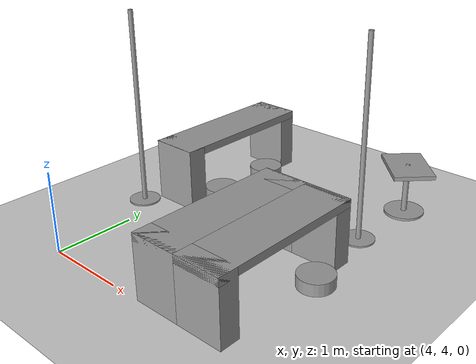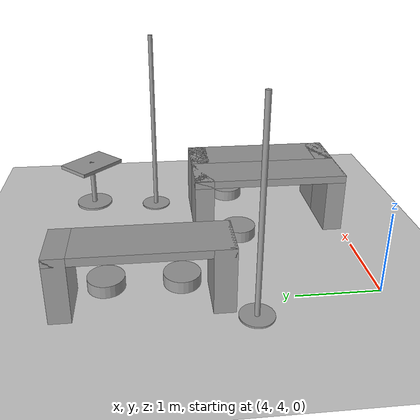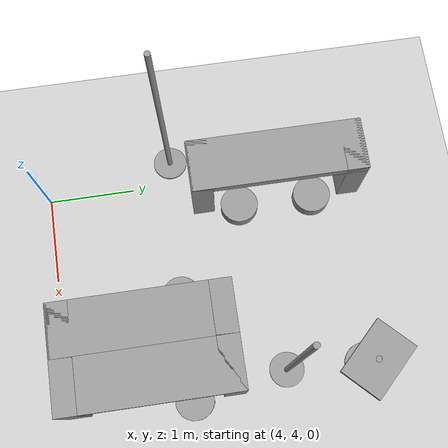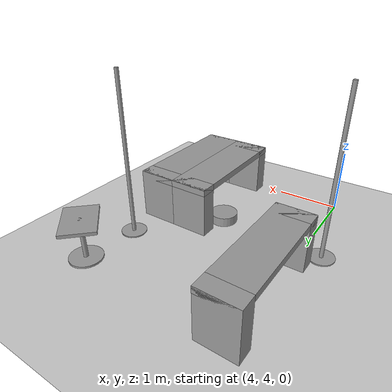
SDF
<sdf version="1.6">
 <world name="default">
  <model name="ground_plane">
   <pose>6.5 0 0 0 -0 0</pose>
   <static>1</static>
   <link name="link">
    <collision name="collision">
     <geometry><plane><normal>0 0 1</normal><size>100 100</size></plane></geometry>
     <surface>
      <contact><collide_bitmask>65535</collide_bitmask></contact>
      <friction><ode><mu>100</mu><mu2>50</mu2></ode></friction>
     </surface>
    </collision>
    <visual name="visual">
     <cast_shadows>0</cast_shadows>
     <geometry><plane><normal>0 0 1</normal><size>100 100</size></plane></geometry>
     <material>
      <script><uri>file://media/materials/scripts/gazebo.material</uri><name>Gazebo/Grey</name></script>
     </material>
    </visual>
   </link>
  </model>
  <model name="Untitled_9">
   <link name="link_0">
    <inertial>
     <mass>1</mass>
     <inertia><ixx>0.145833</ixx><ixy>0</ixy><ixz>0</ixz><iyy>0.145833</iyy><iyz>0</iyz><izz>0.125</izz></inertia>
    </inertial>
    <visual name="visual">
     <geometry><cylinder><radius>0.22</radius><length>0.15</length></cylinder></geometry>
     <material>
      <lighting>1</lighting>
      <script><uri>file://media/materials/scripts/gazebo.material</uri><name>Gazebo/Grey</name></script>
      <shader type="pixel"><normal_map>__default__</normal_map></shader>
      <ambient>0.3 0.3 0.3 1</ambient>
      <diffuse>0.7 0.7 0.7 1</diffuse>
      <specular>0.01 0.01 0.01 1</specular>
      <emissive>0 0 0 1</emissive>
     </material>
    </visual>
    <collision name="collision">
     <geometry><cylinder><radius>0.22</radius><length>0.15</length></cylinder></geometry>
     <surface>
      <friction>
       <ode><mu>1</mu><mu2>1</mu2><fdir1>0 0 0</fdir1><slip1>0</slip1><slip2>0</slip2></ode>
       <torsional>
        <coefficient>1</coefficient>
        <patch_radius>0</patch_radius>
        <surface_radius>0</surface_radius>
        <use_patch_radius>1</use_patch_radius>
        <ode><slip>0</slip></ode>
       </torsional>
      </friction>
      <bounce><restitution_coefficient>0</restitution_coefficient><threshold>1e+06</threshold></bounce>
      <contact>
       <collide_without_contact>0</collide_without_contact>
       <collide_without_contact_bitmask>1</collide_without_contact_bitmask>
       <collide_bitmask>1</collide_bitmask>
       <ode>
        <soft_cfm>0</soft_cfm>
        <soft_erp>0.2</soft_erp>
        <kp>1e+13</kp>
        <kd>1</kd>
        <max_vel>0.01</max_vel>
        <min_depth>0</min_depth>
       </ode>
       <bullet>
        <split_impulse>1</split_impulse>
        <split_impulse_penetration_threshold>-0.01</split_impulse_penetration_threshold>
        <soft_cfm>0</soft_cfm>
        <soft_erp>0.2</soft_erp>
        <kp>1e+13</kp>
        <kd>1</kd>
       </bullet>
      </contact>
     </surface>
    </collision>
   </link>
   <static>0</static>
   <pose>4.4 6.2475 0.074993 1e-06 1e-06 0</pose>
  </model>
  <model name="Untitled_10">
   <link name="link_0">
    <inertial>
     <mass>1</mass>
     <inertia><ixx>0.145833</ixx><ixy>0</ixy><ixz>0</ixz><iyy>0.145833</iyy><iyz>0</iyz><izz>0.125</izz></inertia>
    </inertial>
    <visual name="visual">
     <geometry><cylinder><radius>0.22</radius><length>0.15</length></cylinder></geometry>
     <material>
      <lighting>1</lighting>
      <script><uri>file://media/materials/scripts/gazebo.material</uri><name>Gazebo/Grey</name></script>
      <shader type="pixel"><normal_map>__default__</normal_map></shader>
      <ambient>0.3 0.3 0.3 1</ambient>
      <diffuse>0.7 0.7 0.7 1</diffuse>
      <specular>0.01 0.01 0.01 1</specular>
      <emissive>0 0 0 1</emissive>
     </material>
    </visual>
    <collision name="collision">
     <geometry><cylinder><radius>0.22</radius><length>0.15</length></cylinder></geometry>
     <surface>
      <friction>
       <ode><mu>1</mu><mu2>1</mu2><fdir1>0 0 0</fdir1><slip1>0</slip1><slip2>0</slip2></ode>
       <torsional>
        <coefficient>1</coefficient>
        <patch_radius>0</patch_radius>
        <surface_radius>0</surface_radius>
        <use_patch_radius>1</use_patch_radius>
        <ode><slip>0</slip></ode>
       </torsional>
      </friction>
      <bounce><restitution_coefficient>0</restitution_coefficient><threshold>1e+06</threshold></bounce>
      <contact>
       <collide_without_contact>0</collide_without_contact>
       <collide_without_contact_bitmask>1</collide_without_contact_bitmask>
       <collide_bitmask>1</collide_bitmask>
       <ode>
        <soft_cfm>0</soft_cfm>
        <soft_erp>0.2</soft_erp>
        <kp>1e+13</kp>
        <kd>1</kd>
        <max_vel>0.01</max_vel>
        <min_depth>0</min_depth>
       </ode>
       <bullet>
        <split_impulse>1</split_impulse>
        <split_impulse_penetration_threshold>-0.01</split_impulse_penetration_threshold>
        <soft_cfm>0</soft_cfm>
        <soft_erp>0.2</soft_erp>
        <kp>1e+13</kp>
        <kd>1</kd>
       </bullet>
      </contact>
     </surface>
    </collision>
   </link>
   <static>0</static>
   <pose>4.4 7.12136 0.074993 1e-06 1e-06 0</pose>
  </model>
  <model name="Untitled_11">
   <link name="link_0">
    <inertial>
     <mass>1</mass>
     <inertia><ixx>0.145833</ixx><ixy>0</ixy><ixz>0</ixz><iyy>0.145833</iyy><iyz>0</iyz><izz>0.125</izz></inertia>
    </inertial>
    <visual name="visual">
     <geometry><cylinder><radius>0.22</radius><length>0.15</length></cylinder></geometry>
     <material>
      <lighting>1</lighting>
      <script><uri>file://media/materials/scripts/gazebo.material</uri><name>Gazebo/Grey</name></script>
      <shader type="pixel"><normal_map>__default__</normal_map></shader>
      <ambient>0.3 0.3 0.3 1</ambient>
      <diffuse>0.7 0.7 0.7 1</diffuse>
      <specular>0.01 0.01 0.01 1</specular>
      <emissive>0 0 0 1</emissive>
     </material>
    </visual>
    <collision name="collision">
     <geometry><cylinder><radius>0.22</radius><length>0.15</length></cylinder></geometry>
     <surface>
      <friction>
       <ode><mu>1</mu><mu2>1</mu2><fdir1>0 0 0</fdir1><slip1>0</slip1><slip2>0</slip2></ode>
       <torsional>
        <coefficient>1</coefficient>
        <patch_radius>0</patch_radius>
        <surface_radius>0</surface_radius>
        <use_patch_radius>1</use_patch_radius>
        <ode><slip>0</slip></ode>
       </torsional>
      </friction>
      <bounce><restitution_coefficient>0</restitution_coefficient><threshold>1e+06</threshold></bounce>
      <contact>
       <collide_without_contact>0</collide_without_contact>
       <collide_without_contact_bitmask>1</collide_without_contact_bitmask>
       <collide_bitmask>1</collide_bitmask>
       <ode>
        <soft_cfm>0</soft_cfm>
        <soft_erp>0.2</soft_erp>
        <kp>1e+13</kp>
        <kd>1</kd>
        <max_vel>0.01</max_vel>
        <min_depth>0</min_depth>
       </ode>
       <bullet>
        <split_impulse>1</split_impulse>
        <split_impulse_penetration_threshold>-0.01</split_impulse_penetration_threshold>
        <soft_cfm>0</soft_cfm>
        <soft_erp>0.2</soft_erp>
        <kp>1e+13</kp>
        <kd>1</kd>
       </bullet>
      </contact>
     </surface>
    </collision>
   </link>
   <static>0</static>
   <pose>5.4 5.42168 0.074993 1e-06 1e-06 0</pose>
  </model>
  <model name="Untitled_14">
   <link name="link_0">
    <inertial>
     <mass>1</mass>
     <inertia><ixx>0.145833</ixx><ixy>0</ixy><ixz>0</ixz><iyy>0.145833</iyy><iyz>0</iyz><izz>0.125</izz></inertia>
    </inertial>
    <visual name="visual">
     <geometry><cylinder><radius>0.22</radius><length>0.15</length></cylinder></geometry>
     <material>
      <lighting>1</lighting>
      <script><uri>file://media/materials/scripts/gazebo.material</uri><name>Gazebo/Grey</name></script>
      <shader type="pixel"><normal_map>__default__</normal_map></shader>
      <ambient>0.3 0.3 0.3 1</ambient>
      <diffuse>0.7 0.7 0.7 1</diffuse>
      <specular>0.01 0.01 0.01 1</specular>
      <emissive>0 0 0 1</emissive>
     </material>
    </visual>
    <collision name="collision">
     <geometry><cylinder><radius>0.22</radius><length>0.15</length></cylinder></geometry>
     <surface>
      <friction>
       <ode><mu>1</mu><mu2>1</mu2><fdir1>0 0 0</fdir1><slip1>0</slip1><slip2>0</slip2></ode>
       <torsional>
        <coefficient>1</coefficient>
        <patch_radius>0</patch_radius>
        <surface_radius>0</surface_radius>
        <use_patch_radius>1</use_patch_radius>
        <ode><slip>0</slip></ode>
       </torsional>
      </friction>
      <bounce><restitution_coefficient>0</restitution_coefficient><threshold>1e+06</threshold></bounce>
      <contact>
       <collide_without_contact>0</collide_without_contact>
       <collide_without_contact_bitmask>1</collide_without_contact_bitmask>
       <collide_bitmask>1</collide_bitmask>
       <ode>
        <soft_cfm>0</soft_cfm>
        <soft_erp>0.2</soft_erp>
        <kp>1e+13</kp>
        <kd>1</kd>
        <max_vel>0.01</max_vel>
        <min_depth>0</min_depth>
       </ode>
       <bullet>
        <split_impulse>1</split_impulse>
        <split_impulse_penetration_threshold>-0.01</split_impulse_penetration_threshold>
        <soft_cfm>0</soft_cfm>
        <soft_erp>0.2</soft_erp>
        <kp>1e+13</kp>
        <kd>1</kd>
       </bullet>
      </contact>
     </surface>
    </collision>
   </link>
   <static>0</static>
   <pose>6.6 5.42059 0.074993 1e-06 1e-06 0</pose>
  </model>
  <model name="Table_SF_clone_clone_clone_clone">
   <link name="link_0">
    <pose>-0 -0.875 -0.116667 0 -0 0</pose>
    <inertial>
     <mass>1</mass>
     <inertia>
      <ixx>0.166667</ixx>
      <ixy>0</ixy>
      <ixz>0</ixz>
      <iyy>0.166667</iyy>
      <iyz>0</iyz>
      <izz>0.166667</izz>
     </inertia>
    </inertial>
    <visual name="visual">
     <geometry><box><size>0.6 0.25 0.8</size></box></geometry>
     <material>
      <lighting>1</lighting>
      <script><uri>file://media/materials/scripts/gazebo.material</uri><name>Gazebo/Grey</name></script>
      <shader type="pixel"><normal_map>__default__</normal_map></shader>
      <ambient>0.3 0.3 0.3 1</ambient>
      <diffuse>0.7 0.7 0.7 1</diffuse>
      <specular>0.01 0.01 0.01 1</specular>
      <emissive>0 0 0 1</emissive>
     </material>
    </visual>
    <collision name="collision">
     <geometry><box><size>0.6 0.25 0.8</size></box></geometry>
     <surface>
      <friction>
       <ode><mu>1</mu><mu2>1</mu2><fdir1>0 0 0</fdir1><slip1>0</slip1><slip2>0</slip2></ode>
       <torsional>
        <coefficient>1</coefficient>
        <patch_radius>0</patch_radius>
        <surface_radius>0</surface_radius>
        <use_patch_radius>1</use_patch_radius>
        <ode><slip>0</slip></ode>
       </torsional>
      </friction>
      <bounce><restitution_coefficient>0</restitution_coefficient><threshold>1e+06</threshold></bounce>
      <contact>
       <collide_without_contact>0</collide_without_contact>
       <collide_without_contact_bitmask>1</collide_without_contact_bitmask>
       <collide_bitmask>1</collide_bitmask>
       <ode>
        <soft_cfm>0</soft_cfm>
        <soft_erp>0.2</soft_erp>
        <kp>1e+13</kp>
        <kd>1</kd>
        <max_vel>0.01</max_vel>
        <min_depth>0</min_depth>
       </ode>
       <bullet>
        <split_impulse>1</split_impulse>
        <split_impulse_penetration_threshold>-0.01</split_impulse_penetration_threshold>
        <soft_cfm>0</soft_cfm>
        <soft_erp>0.2</soft_erp>
        <kp>1e+13</kp>
        <kd>1</kd>
       </bullet>
      </contact>
     </surface>
    </collision>
   </link>
   <link name="link_0_clone">
    <pose>0 0.875 -0.116667 0 -0 0</pose>
    <inertial>
     <mass>1</mass>
     <inertia>
      <ixx>0.166667</ixx>
      <ixy>0</ixy>
      <ixz>0</ixz>
      <iyy>0.166667</iyy>
      <iyz>0</iyz>
      <izz>0.166667</izz>
     </inertia>
    </inertial>
    <visual name="visual">
     <geometry><box><size>0.6 0.25 0.8</size></box></geometry>
     <material>
      <lighting>1</lighting>
      <script><uri>file://media/materials/scripts/gazebo.material</uri><name>Gazebo/Grey</name></script>
      <shader type="pixel"><normal_map>__default__</normal_map></shader>
      <ambient>0.3 0.3 0.3 1</ambient>
      <diffuse>0.7 0.7 0.7 1</diffuse>
      <specular>0.01 0.01 0.01 1</specular>
      <emissive>0 0 0 1</emissive>
     </material>
    </visual>
    <collision name="collision">
     <geometry><box><size>0.6 0.25 0.8</size></box></geometry>
     <surface>
      <friction>
       <ode><mu>1</mu><mu2>1</mu2><fdir1>0 0 0</fdir1><slip1>0</slip1><slip2>0</slip2></ode>
       <torsional>
        <coefficient>1</coefficient>
        <patch_radius>0</patch_radius>
        <surface_radius>0</surface_radius>
        <use_patch_radius>1</use_patch_radius>
        <ode><slip>0</slip></ode>
       </torsional>
      </friction>
      <bounce><restitution_coefficient>0</restitution_coefficient><threshold>1e+06</threshold></bounce>
      <contact>
       <collide_without_contact>0</collide_without_contact>
       <collide_without_contact_bitmask>1</collide_without_contact_bitmask>
       <collide_bitmask>1</collide_bitmask>
       <ode>
        <soft_cfm>0</soft_cfm>
        <soft_erp>0.2</soft_erp>
        <kp>1e+13</kp>
        <kd>1</kd>
        <max_vel>0.01</max_vel>
        <min_depth>0</min_depth>
       </ode>
       <bullet>
        <split_impulse>1</split_impulse>
        <split_impulse_penetration_threshold>-0.01</split_impulse_penetration_threshold>
        <soft_cfm>0</soft_cfm>
        <soft_erp>0.2</soft_erp>
        <kp>1e+13</kp>
        <kd>1</kd>
       </bullet>
      </contact>
     </surface>
    </collision>
   </link>
   <link name="link_1">
    <pose>0 0 0.233333 0 -0 0</pose>
    <inertial>
     <mass>1</mass>
     <inertia>
      <ixx>0.166667</ixx>
      <ixy>0</ixy>
      <ixz>0</ixz>
      <iyy>0.166667</iyy>
      <iyz>0</iyz>
      <izz>0.166667</izz>
     </inertia>
    </inertial>
    <visual name="visual">
     <geometry><box><size>0.6 2 0.1</size></box></geometry>
     <material>
      <lighting>1</lighting>
      <script><uri>file://media/materials/scripts/gazebo.material</uri><name>Gazebo/Grey</name></script>
      <shader type="pixel"><normal_map>__default__</normal_map></shader>
      <ambient>0.3 0.3 0.3 1</ambient>
      <diffuse>0.7 0.7 0.7 1</diffuse>
      <specular>0.01 0.01 0.01 1</specular>
      <emissive>0 0 0 1</emissive>
     </material>
    </visual>
    <collision name="collision">
     <geometry><box><size>0.6 2 0.1</size></box></geometry>
     <surface>
      <friction>
       <ode><mu>1</mu><mu2>1</mu2><fdir1>0 0 0</fdir1><slip1>0</slip1><slip2>0</slip2></ode>
       <torsional>
        <coefficient>1</coefficient>
        <patch_radius>0</patch_radius>
        <surface_radius>0</surface_radius>
        <use_patch_radius>1</use_patch_radius>
        <ode><slip>0</slip></ode>
       </torsional>
      </friction>
      <bounce><restitution_coefficient>0</restitution_coefficient><threshold>1e+06</threshold></bounce>
      <contact>
       <collide_without_contact>0</collide_without_contact>
       <collide_without_contact_bitmask>1</collide_without_contact_bitmask>
       <collide_bitmask>1</collide_bitmask>
       <ode>
        <soft_cfm>0</soft_cfm>
        <soft_erp>0.2</soft_erp>
        <kp>1e+13</kp>
        <kd>1</kd>
        <max_vel>0.01</max_vel>
        <min_depth>0</min_depth>
       </ode>
       <bullet>
        <split_impulse>1</split_impulse>
        <split_impulse_penetration_threshold>-0.01</split_impulse_penetration_threshold>
        <soft_cfm>0</soft_cfm>
        <soft_erp>0.2</soft_erp>
        <kp>1e+13</kp>
        <kd>1</kd>
       </bullet>
      </contact>
     </surface>
    </collision>
   </link>
   <joint name="link_0_JOINT_0" type="fixed">
    <parent>link_0</parent>
    <child>link_1</child>
    <physics>
     <ode><limit><cfm>0</cfm><erp>0.2</erp></limit><suspension><cfm>0</cfm><erp>0.2</erp></suspension></ode>
    </physics>
   </joint>
   <joint name="link_0_clone_JOINT_1" type="fixed">
    <parent>link_0_clone</parent>
    <child>link_1</child>
    <physics>
     <ode><limit><cfm>0</cfm><erp>0.2</erp></limit><suspension><cfm>0</cfm><erp>0.2</erp></suspension></ode>
    </physics>
   </joint>
   <static>1</static>
   <pose>4.10001 6.69992 0.516667 0 0 -0.000152</pose>
  </model>
  <model name="Table_SF_clone_clone_0">
   <link name="link_0">
    <pose>0 -0.875 -0.116667 0 -0 0</pose>
    <inertial>
     <mass>1</mass>
     <inertia>
      <ixx>0.166667</ixx>
      <ixy>0</ixy>
      <ixz>0</ixz>
      <iyy>0.166667</iyy>
      <iyz>0</iyz>
      <izz>0.166667</izz>
     </inertia>
    </inertial>
    <visual name="visual">
     <geometry><box><size>0.6 0.25 0.8</size></box></geometry>
     <material>
      <lighting>1</lighting>
      <script><uri>file://media/materials/scripts/gazebo.material</uri><name>Gazebo/Grey</name></script>
      <shader type="pixel"><normal_map>__default__</normal_map></shader>
      <ambient>0.3 0.3 0.3 1</ambient>
      <diffuse>0.7 0.7 0.7 1</diffuse>
      <specular>0.01 0.01 0.01 1</specular>
      <emissive>0 0 0 1</emissive>
     </material>
    </visual>
    <collision name="collision">
     <geometry><box><size>0.6 0.25 0.8</size></box></geometry>
     <surface>
      <friction>
       <ode><mu>1</mu><mu2>1</mu2><fdir1>0 0 0</fdir1><slip1>0</slip1><slip2>0</slip2></ode>
       <torsional>
        <coefficient>1</coefficient>
        <patch_radius>0</patch_radius>
        <surface_radius>0</surface_radius>
        <use_patch_radius>1</use_patch_radius>
        <ode><slip>0</slip></ode>
       </torsional>
      </friction>
      <bounce><restitution_coefficient>0</restitution_coefficient><threshold>1e+06</threshold></bounce>
      <contact>
       <collide_without_contact>0</collide_without_contact>
       <collide_without_contact_bitmask>1</collide_without_contact_bitmask>
       <collide_bitmask>1</collide_bitmask>
       <ode>
        <soft_cfm>0</soft_cfm>
        <soft_erp>0.2</soft_erp>
        <kp>1e+13</kp>
        <kd>1</kd>
        <max_vel>0.01</max_vel>
        <min_depth>0</min_depth>
       </ode>
       <bullet>
        <split_impulse>1</split_impulse>
        <split_impulse_penetration_threshold>-0.01</split_impulse_penetration_threshold>
        <soft_cfm>0</soft_cfm>
        <soft_erp>0.2</soft_erp>
        <kp>1e+13</kp>
        <kd>1</kd>
       </bullet>
      </contact>
     </surface>
    </collision>
   </link>
   <link name="link_0_clone">
    <pose>-0 0.875 -0.116667 0 -0 0</pose>
    <inertial>
     <mass>1</mass>
     <inertia>
      <ixx>0.166667</ixx>
      <ixy>0</ixy>
      <ixz>0</ixz>
      <iyy>0.166667</iyy>
      <iyz>0</iyz>
      <izz>0.166667</izz>
     </inertia>
    </inertial>
    <visual name="visual">
     <geometry><box><size>0.6 0.25 0.8</size></box></geometry>
     <material>
      <lighting>1</lighting>
      <script><uri>file://media/materials/scripts/gazebo.material</uri><name>Gazebo/Grey</name></script>
      <shader type="pixel"><normal_map>__default__</normal_map></shader>
      <ambient>0.3 0.3 0.3 1</ambient>
      <diffuse>0.7 0.7 0.7 1</diffuse>
      <specular>0.01 0.01 0.01 1</specular>
      <emissive>0 0 0 1</emissive>
     </material>
    </visual>
    <collision name="collision">
     <geometry><box><size>0.6 0.25 0.8</size></box></geometry>
     <surface>
      <friction>
       <ode><mu>1</mu><mu2>1</mu2><fdir1>0 0 0</fdir1><slip1>0</slip1><slip2>0</slip2></ode>
       <torsional>
        <coefficient>1</coefficient>
        <patch_radius>0</patch_radius>
        <surface_radius>0</surface_radius>
        <use_patch_radius>1</use_patch_radius>
        <ode><slip>0</slip></ode>
       </torsional>
      </friction>
      <bounce><restitution_coefficient>0</restitution_coefficient><threshold>1e+06</threshold></bounce>
      <contact>
       <collide_without_contact>0</collide_without_contact>
       <collide_without_contact_bitmask>1</collide_without_contact_bitmask>
       <collide_bitmask>1</collide_bitmask>
       <ode>
        <soft_cfm>0</soft_cfm>
        <soft_erp>0.2</soft_erp>
        <kp>1e+13</kp>
        <kd>1</kd>
        <max_vel>0.01</max_vel>
        <min_depth>0</min_depth>
       </ode>
       <bullet>
        <split_impulse>1</split_impulse>
        <split_impulse_penetration_threshold>-0.01</split_impulse_penetration_threshold>
        <soft_cfm>0</soft_cfm>
        <soft_erp>0.2</soft_erp>
        <kp>1e+13</kp>
        <kd>1</kd>
       </bullet>
      </contact>
     </surface>
    </collision>
   </link>
   <link name="link_1">
    <pose>0 0 0.233333 0 -0 0</pose>
    <inertial>
     <mass>1</mass>
     <inertia>
      <ixx>0.166667</ixx>
      <ixy>0</ixy>
      <ixz>0</ixz>
      <iyy>0.166667</iyy>
      <iyz>0</iyz>
      <izz>0.166667</izz>
     </inertia>
    </inertial>
    <visual name="visual">
     <geometry><box><size>0.6 2 0.1</size></box></geometry>
     <material>
      <lighting>1</lighting>
      <script><uri>file://media/materials/scripts/gazebo.material</uri><name>Gazebo/Grey</name></script>
      <shader type="pixel"><normal_map>__default__</normal_map></shader>
      <ambient>0.3 0.3 0.3 1</ambient>
      <diffuse>0.7 0.7 0.7 1</diffuse>
      <specular>0.01 0.01 0.01 1</specular>
      <emissive>0 0 0 1</emissive>
     </material>
    </visual>
    <collision name="collision">
     <geometry><box><size>0.6 2 0.1</size></box></geometry>
     <surface>
      <friction>
       <ode><mu>1</mu><mu2>1</mu2><fdir1>0 0 0</fdir1><slip1>0</slip1><slip2>0</slip2></ode>
       <torsional>
        <coefficient>1</coefficient>
        <patch_radius>0</patch_radius>
        <surface_radius>0</surface_radius>
        <use_patch_radius>1</use_patch_radius>
        <ode><slip>0</slip></ode>
       </torsional>
      </friction>
      <bounce><restitution_coefficient>0</restitution_coefficient><threshold>1e+06</threshold></bounce>
      <contact>
       <collide_without_contact>0</collide_without_contact>
       <collide_without_contact_bitmask>1</collide_without_contact_bitmask>
       <collide_bitmask>1</collide_bitmask>
       <ode>
        <soft_cfm>0</soft_cfm>
        <soft_erp>0.2</soft_erp>
        <kp>1e+13</kp>
        <kd>1</kd>
        <max_vel>0.01</max_vel>
        <min_depth>0</min_depth>
       </ode>
       <bullet>
        <split_impulse>1</split_impulse>
        <split_impulse_penetration_threshold>-0.01</split_impulse_penetration_threshold>
        <soft_cfm>0</soft_cfm>
        <soft_erp>0.2</soft_erp>
        <kp>1e+13</kp>
        <kd>1</kd>
       </bullet>
      </contact>
     </surface>
    </collision>
   </link>
   <joint name="link_0_JOINT_0" type="fixed">
    <parent>link_0</parent>
    <child>link_1</child>
    <physics>
     <ode><limit><cfm>0</cfm><erp>0.2</erp></limit><suspension><cfm>0</cfm><erp>0.2</erp></suspension></ode>
    </physics>
   </joint>
   <joint name="link_0_clone_JOINT_1" type="fixed">
    <parent>link_0_clone</parent>
    <child>link_1</child>
    <physics>
     <ode><limit><cfm>0</cfm><erp>0.2</erp></limit><suspension><cfm>0</cfm><erp>0.2</erp></suspension></ode>
    </physics>
   </joint>
   <static>1</static>
   <pose>5.69999 5 0.516667 0 -0 3e-06</pose>
  </model>
  <model name="Table_SF_clone_clone_0_clone">
   <link name="link_0">
    <pose>0 -0.875 -0.116667 0 -0 0</pose>
    <inertial>
     <mass>1</mass>
     <inertia>
      <ixx>0.166667</ixx>
      <ixy>0</ixy>
      <ixz>0</ixz>
      <iyy>0.166667</iyy>
      <iyz>0</iyz>
      <izz>0.166667</izz>
     </inertia>
    </inertial>
    <visual name="visual">
     <geometry><box><size>0.6 0.25 0.8</size></box></geometry>
     <material>
      <lighting>1</lighting>
      <script><uri>file://media/materials/scripts/gazebo.material</uri><name>Gazebo/Grey</name></script>
      <shader type="pixel"><normal_map>__default__</normal_map></shader>
      <ambient>0.3 0.3 0.3 1</ambient>
      <diffuse>0.7 0.7 0.7 1</diffuse>
      <specular>0.01 0.01 0.01 1</specular>
      <emissive>0 0 0 1</emissive>
     </material>
    </visual>
    <collision name="collision">
     <geometry><box><size>0.6 0.25 0.8</size></box></geometry>
     <surface>
      <friction>
       <ode><mu>1</mu><mu2>1</mu2><fdir1>0 0 0</fdir1><slip1>0</slip1><slip2>0</slip2></ode>
       <torsional>
        <coefficient>1</coefficient>
        <patch_radius>0</patch_radius>
        <surface_radius>0</surface_radius>
        <use_patch_radius>1</use_patch_radius>
        <ode><slip>0</slip></ode>
       </torsional>
      </friction>
      <bounce><restitution_coefficient>0</restitution_coefficient><threshold>1e+06</threshold></bounce>
      <contact>
       <collide_without_contact>0</collide_without_contact>
       <collide_without_contact_bitmask>1</collide_without_contact_bitmask>
       <collide_bitmask>1</collide_bitmask>
       <ode>
        <soft_cfm>0</soft_cfm>
        <soft_erp>0.2</soft_erp>
        <kp>1e+13</kp>
        <kd>1</kd>
        <max_vel>0.01</max_vel>
        <min_depth>0</min_depth>
       </ode>
       <bullet>
        <split_impulse>1</split_impulse>
        <split_impulse_penetration_threshold>-0.01</split_impulse_penetration_threshold>
        <soft_cfm>0</soft_cfm>
        <soft_erp>0.2</soft_erp>
        <kp>1e+13</kp>
        <kd>1</kd>
       </bullet>
      </contact>
     </surface>
    </collision>
   </link>
   <link name="link_0_clone">
    <pose>-0 0.875 -0.116667 0 -0 0</pose>
    <inertial>
     <mass>1</mass>
     <inertia>
      <ixx>0.166667</ixx>
      <ixy>0</ixy>
      <ixz>0</ixz>
      <iyy>0.166667</iyy>
      <iyz>0</iyz>
      <izz>0.166667</izz>
     </inertia>
    </inertial>
    <visual name="visual">
     <geometry><box><size>0.6 0.25 0.8</size></box></geometry>
     <material>
      <lighting>1</lighting>
      <script><uri>file://media/materials/scripts/gazebo.material</uri><name>Gazebo/Grey</name></script>
      <shader type="pixel"><normal_map>__default__</normal_map></shader>
      <ambient>0.3 0.3 0.3 1</ambient>
      <diffuse>0.7 0.7 0.7 1</diffuse>
      <specular>0.01 0.01 0.01 1</specular>
      <emissive>0 0 0 1</emissive>
     </material>
    </visual>
    <collision name="collision">
     <geometry><box><size>0.6 0.25 0.8</size></box></geometry>
     <surface>
      <friction>
       <ode><mu>1</mu><mu2>1</mu2><fdir1>0 0 0</fdir1><slip1>0</slip1><slip2>0</slip2></ode>
       <torsional>
        <coefficient>1</coefficient>
        <patch_radius>0</patch_radius>
        <surface_radius>0</surface_radius>
        <use_patch_radius>1</use_patch_radius>
        <ode><slip>0</slip></ode>
       </torsional>
      </friction>
      <bounce><restitution_coefficient>0</restitution_coefficient><threshold>1e+06</threshold></bounce>
      <contact>
       <collide_without_contact>0</collide_without_contact>
       <collide_without_contact_bitmask>1</collide_without_contact_bitmask>
       <collide_bitmask>1</collide_bitmask>
       <ode>
        <soft_cfm>0</soft_cfm>
        <soft_erp>0.2</soft_erp>
        <kp>1e+13</kp>
        <kd>1</kd>
        <max_vel>0.01</max_vel>
        <min_depth>0</min_depth>
       </ode>
       <bullet>
        <split_impulse>1</split_impulse>
        <split_impulse_penetration_threshold>-0.01</split_impulse_penetration_threshold>
        <soft_cfm>0</soft_cfm>
        <soft_erp>0.2</soft_erp>
        <kp>1e+13</kp>
        <kd>1</kd>
       </bullet>
      </contact>
     </surface>
    </collision>
   </link>
   <link name="link_1">
    <pose>0 0 0.233333 0 -0 0</pose>
    <inertial>
     <mass>1</mass>
     <inertia>
      <ixx>0.166667</ixx>
      <ixy>0</ixy>
      <ixz>0</ixz>
      <iyy>0.166667</iyy>
      <iyz>0</iyz>
      <izz>0.166667</izz>
     </inertia>
    </inertial>
    <visual name="visual">
     <geometry><box><size>0.6 2 0.1</size></box></geometry>
     <material>
      <lighting>1</lighting>
      <script><uri>file://media/materials/scripts/gazebo.material</uri><name>Gazebo/Grey</name></script>
      <shader type="pixel"><normal_map>__default__</normal_map></shader>
      <ambient>0.3 0.3 0.3 1</ambient>
      <diffuse>0.7 0.7 0.7 1</diffuse>
      <specular>0.01 0.01 0.01 1</specular>
      <emissive>0 0 0 1</emissive>
     </material>
    </visual>
    <collision name="collision">
     <geometry><box><size>0.6 2 0.1</size></box></geometry>
     <surface>
      <friction>
       <ode><mu>1</mu><mu2>1</mu2><fdir1>0 0 0</fdir1><slip1>0</slip1><slip2>0</slip2></ode>
       <torsional>
        <coefficient>1</coefficient>
        <patch_radius>0</patch_radius>
        <surface_radius>0</surface_radius>
        <use_patch_radius>1</use_patch_radius>
        <ode><slip>0</slip></ode>
       </torsional>
      </friction>
      <bounce><restitution_coefficient>0</restitution_coefficient><threshold>1e+06</threshold></bounce>
      <contact>
       <collide_without_contact>0</collide_without_contact>
       <collide_without_contact_bitmask>1</collide_without_contact_bitmask>
       <collide_bitmask>1</collide_bitmask>
       <ode>
        <soft_cfm>0</soft_cfm>
        <soft_erp>0.2</soft_erp>
        <kp>1e+13</kp>
        <kd>1</kd>
        <max_vel>0.01</max_vel>
        <min_depth>0</min_depth>
       </ode>
       <bullet>
        <split_impulse>1</split_impulse>
        <split_impulse_penetration_threshold>-0.01</split_impulse_penetration_threshold>
        <soft_cfm>0</soft_cfm>
        <soft_erp>0.2</soft_erp>
        <kp>1e+13</kp>
        <kd>1</kd>
       </bullet>
      </contact>
     </surface>
    </collision>
   </link>
   <joint name="link_0_JOINT_0" type="fixed">
    <parent>link_0</parent>
    <child>link_1</child>
    <physics>
     <ode><limit><cfm>0</cfm><erp>0.2</erp></limit><suspension><cfm>0</cfm><erp>0.2</erp></suspension></ode>
    </physics>
   </joint>
   <joint name="link_0_clone_JOINT_1" type="fixed">
    <parent>link_0_clone</parent>
    <child>link_1</child>
    <physics>
     <ode><limit><cfm>0</cfm><erp>0.2</erp></limit><suspension><cfm>0</cfm><erp>0.2</erp></suspension></ode>
    </physics>
   </joint>
   <static>1</static>
   <pose>6.30001 4.99993 0.516668 1e-06 0 -8e-06</pose>
  </model>
  <model name="Pillar_SF_clone_0">
   <link name="link_0">
    <pose>-0 0 0.01 0 -0 0</pose>
    <inertial>
     <mass>1</mass>
     <inertia><ixx>0.145833</ixx><ixy>0</ixy><ixz>0</ixz><iyy>0.145833</iyy><iyz>0</iyz><izz>0.125</izz></inertia>
    </inertial>
    <visual name="visual">
     <geometry><cylinder><radius>0.2</radius><length>0.02</length></cylinder></geometry>
     <material>
      <lighting>1</lighting>
      <script><uri>file://media/materials/scripts/gazebo.material</uri><name>Gazebo/Grey</name></script>
      <shader type="pixel"><normal_map>__default__</normal_map></shader>
      <ambient>0.3 0.3 0.3 1</ambient>
      <diffuse>0.7 0.7 0.7 1</diffuse>
      <specular>0.01 0.01 0.01 1</specular>
      <emissive>0 0 0 1</emissive>
     </material>
    </visual>
    <collision name="collision">
     <geometry><cylinder><radius>0.2</radius><length>0.02</length></cylinder></geometry>
     <surface>
      <friction>
       <ode><mu>1</mu><mu2>1</mu2><fdir1>0 0 0</fdir1><slip1>0</slip1><slip2>0</slip2></ode>
       <torsional>
        <coefficient>1</coefficient>
        <patch_radius>0</patch_radius>
        <surface_radius>0</surface_radius>
        <use_patch_radius>1</use_patch_radius>
        <ode><slip>0</slip></ode>
       </torsional>
      </friction>
      <bounce><restitution_coefficient>0</restitution_coefficient><threshold>1e+06</threshold></bounce>
      <contact>
       <collide_without_contact>0</collide_without_contact>
       <collide_without_contact_bitmask>1</collide_without_contact_bitmask>
       <collide_bitmask>1</collide_bitmask>
       <ode>
        <soft_cfm>0</soft_cfm>
        <soft_erp>0.2</soft_erp>
        <kp>1e+13</kp>
        <kd>1</kd>
        <max_vel>0.01</max_vel>
        <min_depth>0</min_depth>
       </ode>
       <bullet>
        <split_impulse>1</split_impulse>
        <split_impulse_penetration_threshold>-0.01</split_impulse_penetration_threshold>
        <soft_cfm>0</soft_cfm>
        <soft_erp>0.2</soft_erp>
        <kp>1e+13</kp>
        <kd>1</kd>
       </bullet>
      </contact>
     </surface>
    </collision>
   </link>
   <link name="link_1">
    <pose>-0 0 1.25 0 -0 0</pose>
    <inertial>
     <mass>1</mass>
     <inertia><ixx>0.145833</ixx><ixy>0</ixy><ixz>0</ixz><iyy>0.145833</iyy><iyz>0</iyz><izz>0.125</izz></inertia>
    </inertial>
    <visual name="visual">
     <geometry><cylinder><radius>0.03</radius><length>2.5</length></cylinder></geometry>
     <material>
      <lighting>1</lighting>
      <script><uri>file://media/materials/scripts/gazebo.material</uri><name>Gazebo/Grey</name></script>
      <shader type="pixel"><normal_map>__default__</normal_map></shader>
      <ambient>0.3 0.3 0.3 1</ambient>
      <diffuse>0.7 0.7 0.7 1</diffuse>
      <specular>0.01 0.01 0.01 1</specular>
      <emissive>0 0 0 1</emissive>
     </material>
    </visual>
    <collision name="collision">
     <geometry><cylinder><radius>0.03</radius><length>2.5</length></cylinder></geometry>
     <surface>
      <friction>
       <ode><mu>1</mu><mu2>1</mu2><fdir1>0 0 0</fdir1><slip1>0</slip1><slip2>0</slip2></ode>
       <torsional>
        <coefficient>1</coefficient>
        <patch_radius>0</patch_radius>
        <surface_radius>0</surface_radius>
        <use_patch_radius>1</use_patch_radius>
        <ode><slip>0</slip></ode>
       </torsional>
      </friction>
      <bounce><restitution_coefficient>0</restitution_coefficient><threshold>1e+06</threshold></bounce>
      <contact>
       <collide_without_contact>0</collide_without_contact>
       <collide_without_contact_bitmask>1</collide_without_contact_bitmask>
       <collide_bitmask>1</collide_bitmask>
       <ode>
        <soft_cfm>0</soft_cfm>
        <soft_erp>0.2</soft_erp>
        <kp>1e+13</kp>
        <kd>1</kd>
        <max_vel>0.01</max_vel>
        <min_depth>0</min_depth>
       </ode>
       <bullet>
        <split_impulse>1</split_impulse>
        <split_impulse_penetration_threshold>-0.01</split_impulse_penetration_threshold>
        <soft_cfm>0</soft_cfm>
        <soft_erp>0.2</soft_erp>
        <kp>1e+13</kp>
        <kd>1</kd>
       </bullet>
      </contact>
     </surface>
    </collision>
   </link>
   <joint name="link_0_JOINT_0" type="fixed">
    <parent>link_0</parent>
    <child>link_1</child>
    <physics>
     <ode><limit><cfm>0</cfm><erp>0.2</erp></limit><suspension><cfm>0</cfm><erp>0.2</erp></suspension></ode>
    </physics>
   </joint>
   <static>1</static>
   <pose>6.40083 6.50008 0 0 0 -0.013223</pose>
  </model>
  <model name="Pillar_SF_clone_1">
   <link name="link_0">
    <pose>0 -0 0.01 0 -0 0</pose>
    <inertial>
     <mass>1</mass>
     <inertia><ixx>0.145833</ixx><ixy>0</ixy><ixz>0</ixz><iyy>0.145833</iyy><iyz>0</iyz><izz>0.125</izz></inertia>
    </inertial>
    <visual name="visual">
     <geometry><cylinder><radius>0.2</radius><length>0.02</length></cylinder></geometry>
     <material>
      <lighting>1</lighting>
      <script><uri>file://media/materials/scripts/gazebo.material</uri><name>Gazebo/Grey</name></script>
      <shader type="pixel"><normal_map>__default__</normal_map></shader>
      <ambient>0.3 0.3 0.3 1</ambient>
      <diffuse>0.7 0.7 0.7 1</diffuse>
      <specular>0.01 0.01 0.01 1</specular>
      <emissive>0 0 0 1</emissive>
     </material>
    </visual>
    <collision name="collision">
     <geometry><cylinder><radius>0.2</radius><length>0.02</length></cylinder></geometry>
     <surface>
      <friction>
       <ode><mu>1</mu><mu2>1</mu2><fdir1>0 0 0</fdir1><slip1>0</slip1><slip2>0</slip2></ode>
       <torsional>
        <coefficient>1</coefficient>
        <patch_radius>0</patch_radius>
        <surface_radius>0</surface_radius>
        <use_patch_radius>1</use_patch_radius>
        <ode><slip>0</slip></ode>
       </torsional>
      </friction>
      <bounce><restitution_coefficient>0</restitution_coefficient><threshold>1e+06</threshold></bounce>
      <contact>
       <collide_without_contact>0</collide_without_contact>
       <collide_without_contact_bitmask>1</collide_without_contact_bitmask>
       <collide_bitmask>1</collide_bitmask>
       <ode>
        <soft_cfm>0</soft_cfm>
        <soft_erp>0.2</soft_erp>
        <kp>1e+13</kp>
        <kd>1</kd>
        <max_vel>0.01</max_vel>
        <min_depth>0</min_depth>
       </ode>
       <bullet>
        <split_impulse>1</split_impulse>
        <split_impulse_penetration_threshold>-0.01</split_impulse_penetration_threshold>
        <soft_cfm>0</soft_cfm>
        <soft_erp>0.2</soft_erp>
        <kp>1e+13</kp>
        <kd>1</kd>
       </bullet>
      </contact>
     </surface>
    </collision>
   </link>
   <link name="link_1">
    <pose>0 -0 1.25 0 -0 0</pose>
    <inertial>
     <mass>1</mass>
     <inertia><ixx>0.145833</ixx><ixy>0</ixy><ixz>0</ixz><iyy>0.145833</iyy><iyz>0</iyz><izz>0.125</izz></inertia>
    </inertial>
    <visual name="visual">
     <geometry><cylinder><radius>0.03</radius><length>2.5</length></cylinder></geometry>
     <material>
      <lighting>1</lighting>
      <script><uri>file://media/materials/scripts/gazebo.material</uri><name>Gazebo/Grey</name></script>
      <shader type="pixel"><normal_map>__default__</normal_map></shader>
      <ambient>0.3 0.3 0.3 1</ambient>
      <diffuse>0.7 0.7 0.7 1</diffuse>
      <specular>0.01 0.01 0.01 1</specular>
      <emissive>0 0 0 1</emissive>
     </material>
    </visual>
    <collision name="collision">
     <geometry><cylinder><radius>0.03</radius><length>2.5</length></cylinder></geometry>
     <surface>
      <friction>
       <ode><mu>1</mu><mu2>1</mu2><fdir1>0 0 0</fdir1><slip1>0</slip1><slip2>0</slip2></ode>
       <torsional>
        <coefficient>1</coefficient>
        <patch_radius>0</patch_radius>
        <surface_radius>0</surface_radius>
        <use_patch_radius>1</use_patch_radius>
        <ode><slip>0</slip></ode>
       </torsional>
      </friction>
      <bounce><restitution_coefficient>0</restitution_coefficient><threshold>1e+06</threshold></bounce>
      <contact>
       <collide_without_contact>0</collide_without_contact>
       <collide_without_contact_bitmask>1</collide_without_contact_bitmask>
       <collide_bitmask>1</collide_bitmask>
       <ode>
        <soft_cfm>0</soft_cfm>
        <soft_erp>0.2</soft_erp>
        <kp>1e+13</kp>
        <kd>1</kd>
        <max_vel>0.01</max_vel>
        <min_depth>0</min_depth>
       </ode>
       <bullet>
        <split_impulse>1</split_impulse>
        <split_impulse_penetration_threshold>-0.01</split_impulse_penetration_threshold>
        <soft_cfm>0</soft_cfm>
        <soft_erp>0.2</soft_erp>
        <kp>1e+13</kp>
        <kd>1</kd>
       </bullet>
      </contact>
     </surface>
    </collision>
   </link>
   <joint name="link_0_JOINT_0" type="fixed">
    <parent>link_0</parent>
    <child>link_1</child>
    <physics>
     <ode><limit><cfm>0</cfm><erp>0.2</erp></limit><suspension><cfm>0</cfm><erp>0.2</erp></suspension></ode>
    </physics>
   </joint>
   <static>1</static>
   <pose>3.71314 5.49326 0 0 0 -0.013001</pose>
  </model>
  <model name="Table_mac_SF">
   <link name="link_0">
    <pose>-0 0 -0.306667 0 -0 0</pose>
    <inertial>
     <mass>1</mass>
     <inertia><ixx>0.145833</ixx><ixy>0</ixy><ixz>0</ixz><iyy>0.145833</iyy><iyz>0</iyz><izz>0.125</izz></inertia>
    </inertial>
    <visual name="visual">
     <geometry><cylinder><radius>0.25</radius><length>0.03</length></cylinder></geometry>
     <material>
      <lighting>1</lighting>
      <script><uri>file://media/materials/scripts/gazebo.material</uri><name>Gazebo/Grey</name></script>
      <shader type="pixel"><normal_map>__default__</normal_map></shader>
      <ambient>0.3 0.3 0.3 1</ambient>
      <diffuse>0.7 0.7 0.7 1</diffuse>
      <specular>0.01 0.01 0.01 1</specular>
      <emissive>0 0 0 1</emissive>
     </material>
    </visual>
    <collision name="collision">
     <geometry><cylinder><radius>0.25</radius><length>0.03</length></cylinder></geometry>
     <surface>
      <friction>
       <ode><mu>1</mu><mu2>1</mu2><fdir1>0 0 0</fdir1><slip1>0</slip1><slip2>0</slip2></ode>
       <torsional>
        <coefficient>1</coefficient>
        <patch_radius>0</patch_radius>
        <surface_radius>0</surface_radius>
        <use_patch_radius>1</use_patch_radius>
        <ode><slip>0</slip></ode>
       </torsional>
      </friction>
      <bounce><restitution_coefficient>0</restitution_coefficient><threshold>1e+06</threshold></bounce>
      <contact>
       <collide_without_contact>0</collide_without_contact>
       <collide_without_contact_bitmask>1</collide_without_contact_bitmask>
       <collide_bitmask>1</collide_bitmask>
       <ode>
        <soft_cfm>0</soft_cfm>
        <soft_erp>0.2</soft_erp>
        <kp>1e+13</kp>
        <kd>1</kd>
        <max_vel>0.01</max_vel>
        <min_depth>0</min_depth>
       </ode>
       <bullet>
        <split_impulse>1</split_impulse>
        <split_impulse_penetration_threshold>-0.01</split_impulse_penetration_threshold>
        <soft_cfm>0</soft_cfm>
        <soft_erp>0.2</soft_erp>
        <kp>1e+13</kp>
        <kd>1</kd>
       </bullet>
      </contact>
     </surface>
    </collision>
   </link>
   <link name="link_1">
    <pose>0 0 0.003333 0 -0 0</pose>
    <inertial>
     <mass>1</mass>
     <inertia><ixx>0.145833</ixx><ixy>0</ixy><ixz>0</ixz><iyy>0.145833</iyy><iyz>0</iyz><izz>0.125</izz></inertia>
    </inertial>
    <visual name="visual">
     <geometry><cylinder><radius>0.035</radius><length>0.65</length></cylinder></geometry>
     <material>
      <lighting>1</lighting>
      <script><uri>file://media/materials/scripts/gazebo.material</uri><name>Gazebo/Grey</name></script>
      <shader type="pixel"><normal_map>__default__</normal_map></shader>
      <ambient>0.3 0.3 0.3 1</ambient>
      <diffuse>0.7 0.7 0.7 1</diffuse>
      <specular>0.01 0.01 0.01 1</specular>
      <emissive>0 0 0 1</emissive>
     </material>
    </visual>
    <collision name="collision">
     <geometry><cylinder><radius>0.035</radius><length>0.65</length></cylinder></geometry>
     <surface>
      <friction>
       <ode><mu>1</mu><mu2>1</mu2><fdir1>0 0 0</fdir1><slip1>0</slip1><slip2>0</slip2></ode>
       <torsional>
        <coefficient>1</coefficient>
        <patch_radius>0</patch_radius>
        <surface_radius>0</surface_radius>
        <use_patch_radius>1</use_patch_radius>
        <ode><slip>0</slip></ode>
       </torsional>
      </friction>
      <bounce><restitution_coefficient>0</restitution_coefficient><threshold>1e+06</threshold></bounce>
      <contact>
       <collide_without_contact>0</collide_without_contact>
       <collide_without_contact_bitmask>1</collide_without_contact_bitmask>
       <collide_bitmask>1</collide_bitmask>
       <ode>
        <soft_cfm>0</soft_cfm>
        <soft_erp>0.2</soft_erp>
        <kp>1e+13</kp>
        <kd>1</kd>
        <max_vel>0.01</max_vel>
        <min_depth>0</min_depth>
       </ode>
       <bullet>
        <split_impulse>1</split_impulse>
        <split_impulse_penetration_threshold>-0.01</split_impulse_penetration_threshold>
        <soft_cfm>0</soft_cfm>
        <soft_erp>0.2</soft_erp>
        <kp>1e+13</kp>
        <kd>1</kd>
       </bullet>
      </contact>
     </surface>
    </collision>
   </link>
   <link name="link_2">
    <pose>-0 0 0.303333 0 -0 0.7854</pose>
    <inertial>
     <mass>1</mass>
     <inertia>
      <ixx>0.166667</ixx>
      <ixy>0</ixy>
      <ixz>0</ixz>
      <iyy>0.166667</iyy>
      <iyz>0</iyz>
      <izz>0.166667</izz>
     </inertia>
    </inertial>
    <visual name="visual">
     <geometry><box><size>0.5 0.7 0.05</size></box></geometry>
     <material>
      <lighting>1</lighting>
      <script><uri>file://media/materials/scripts/gazebo.material</uri><name>Gazebo/Grey</name></script>
      <shader type="pixel"><normal_map>__default__</normal_map></shader>
      <ambient>0.3 0.3 0.3 1</ambient>
      <diffuse>0.7 0.7 0.7 1</diffuse>
      <specular>0.01 0.01 0.01 1</specular>
      <emissive>0 0 0 1</emissive>
     </material>
    </visual>
    <collision name="collision">
     <geometry><box><size>0.5 0.7 0.05</size></box></geometry>
     <surface>
      <friction>
       <ode><mu>1</mu><mu2>1</mu2><fdir1>0 0 0</fdir1><slip1>0</slip1><slip2>0</slip2></ode>
       <torsional>
        <coefficient>1</coefficient>
        <patch_radius>0</patch_radius>
        <surface_radius>0</surface_radius>
        <use_patch_radius>1</use_patch_radius>
        <ode><slip>0</slip></ode>
       </torsional>
      </friction>
      <bounce><restitution_coefficient>0</restitution_coefficient><threshold>1e+06</threshold></bounce>
      <contact>
       <collide_without_contact>0</collide_without_contact>
       <collide_without_contact_bitmask>1</collide_without_contact_bitmask>
       <collide_bitmask>1</collide_bitmask>
       <ode>
        <soft_cfm>0</soft_cfm>
        <soft_erp>0.2</soft_erp>
        <kp>1e+13</kp>
        <kd>1</kd>
        <max_vel>0.01</max_vel>
        <min_depth>0</min_depth>
       </ode>
       <bullet>
        <split_impulse>1</split_impulse>
        <split_impulse_penetration_threshold>-0.01</split_impulse_penetration_threshold>
        <soft_cfm>0</soft_cfm>
        <soft_erp>0.2</soft_erp>
        <kp>1e+13</kp>
        <kd>1</kd>
       </bullet>
      </contact>
     </surface>
    </collision>
   </link>
   <joint name="link_0_JOINT_1" type="fixed">
    <parent>link_0</parent>
    <child>link_1</child>
    <physics>
     <ode><limit><cfm>0</cfm><erp>0.2</erp></limit><suspension><cfm>0</cfm><erp>0.2</erp></suspension></ode>
    </physics>
   </joint>
   <joint name="link_1_JOINT_2" type="fixed">
    <parent>link_1</parent>
    <child>link_2</child>
    <physics>
     <ode><limit><cfm>0</cfm><erp>0.2</erp></limit><suspension><cfm>0</cfm><erp>0.2</erp></suspension></ode>
    </physics>
   </joint>
   <static>1</static>
   <pose>6.46997 7.40637 0.35 0 -0 0</pose>
  </model>
 </world>
</sdf>
